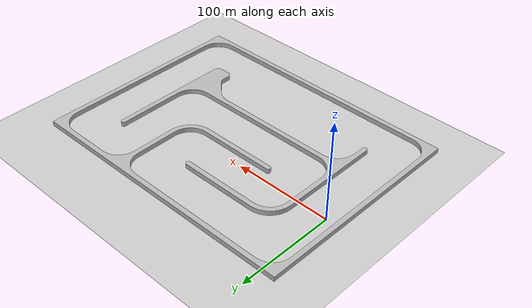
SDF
<sdf version='1.6'>
  <world name='default'>
    <light name='sun' type='directional'>
      <cast_shadows>1</cast_shadows>
      <pose frame=''>0 0 100 0 -0 0</pose>
      <diffuse>0.8 0.8 0.8 1</diffuse>
      <specular>0.1 0.1 0.1 1</specular>
      <attenuation>
        <range>1000</range>
        <constant>0.9</constant>
        <linear>0.01</linear>
        <quadratic>0.001</quadratic>
      </attenuation>
      <direction>-0.5 0.5 -1</direction>
    </light>
    <include>
      <uri>model://ground_plane</uri>
    </include>
    <include>
        <uri>model://race_track</uri>
    </include>

    <plugin name="gazebo_ros_state" filename="libgazebo_ros_state.so">
      <ros>
        <namespace>/f1tenth_simulation</namespace>
      </ros>
      <update_rate>60.0</update_rate>
    </plugin>

  </world>
</sdf>

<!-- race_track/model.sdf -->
<sdf version='1.4'>

    <model name="porto_track">

      <pose> -145.868000 -280.893000 0.0  0.0 0.0 0.0 </pose>

      <link name="race_track">

        <collision name="collision">
          <geometry>
            <mesh>
              <uri>file://meshes/race_track/race_track.stl</uri>
            </mesh>
          </geometry>
        </collision>

        <visual name="visual">
          <geometry>
            <mesh>
              <uri>file://meshes/race_track/race_track.stl</uri>
            </mesh>
          </geometry>
        </visual>

      </link>

      <static>1</static>

    </model>

</sdf>
